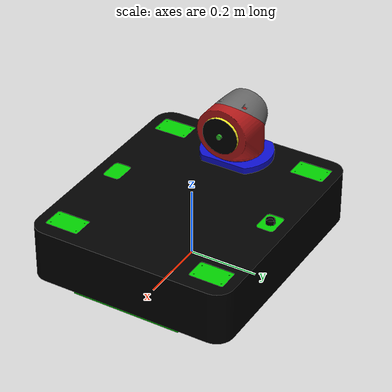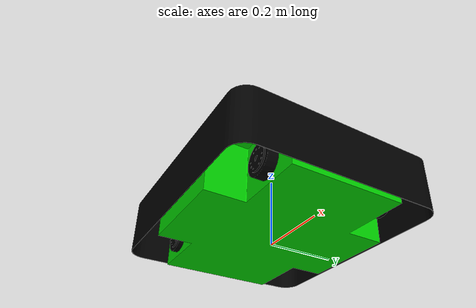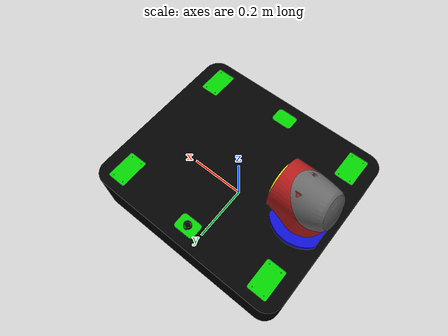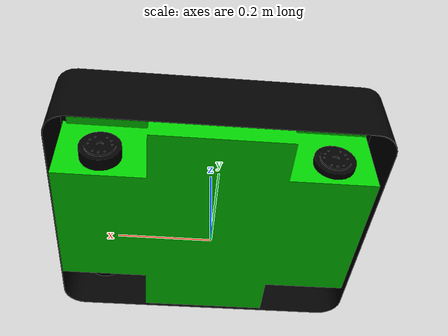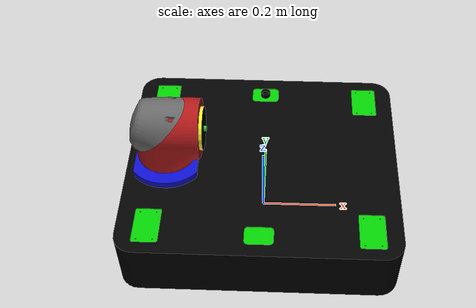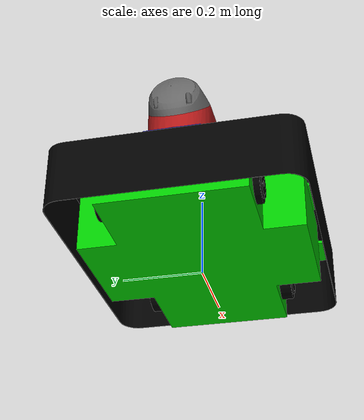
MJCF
<mujoco model="base">
  <default>
    <default class="visual">
      <geom group="2" type="mesh" contype="0" conaffinity="0"/>
    </default>
    <default class="collision">
      <geom group="3" type="mesh"/>
    </default>
  </default>
  <asset>
    <material name="material_0" specular="0.4000000000000001" shininess="0.001" rgba="0.40000000 0.40000000 0.40000000 1.0"/>
    <material name="material_1" specular="0.4000000000000001" shininess="0.001" rgba="0.69411765 0.09803922 0.09803922 1.0"/>
    <material name="material_2" specular="0.4000000000000001" shininess="0.001" rgba="0.00000000 0.00000000 0.00000000 1.0"/>
    <material name="material_3" specular="0.4000000000000001" shininess="0.001" rgba="1.00000000 0.93725490 0.13725490 1.0"/>
    <material name="material_4" specular="0.4000000000000001" shininess="0.001" rgba="0.16470588 0.74901961 0.14509804 1.0"/>
    <material name="material_5" specular="0.4000000000000001" shininess="0.001" rgba="0.00392157 0.80000000 0.00000000 1.0"/>
    <material name="material_6" specular="0.4000000000000001" shininess="0.001" rgba="0.05098039 0.05882353 0.80000000 1.0"/>
    <material name="material_7" specular="0.4000000000000001" shininess="0.001" rgba="0.56078431 0.80000000 0.58823529 1.0"/>
    <mesh file="base_0.obj"/>
    <mesh file="base_1.obj"/>
    <mesh file="base_2.obj"/>
    <mesh file="base_3.obj"/>
    <mesh file="base_4.obj"/>
    <mesh file="base_5.obj"/>
    <mesh file="base_6.obj"/>
    <mesh file="base_7.obj"/>
  </asset>
  <worldbody>
    <body name="base">
      <geom mesh="base_0" material="material_7" class="visual"/>
      <geom mesh="base_1" material="material_6" class="visual"/>
      <geom mesh="base_2" material="material_5" class="visual"/>
      <geom mesh="base_3" material="material_4" class="visual"/>
      <geom mesh="base_4" material="material_3" class="visual"/>
      <geom mesh="base_5" material="material_2" class="visual"/>
      <geom mesh="base_6" material="material_1" class="visual"/>
      <geom mesh="base_7" material="material_0" class="visual"/>
    </body>
  </worldbody>
</mujoco>
